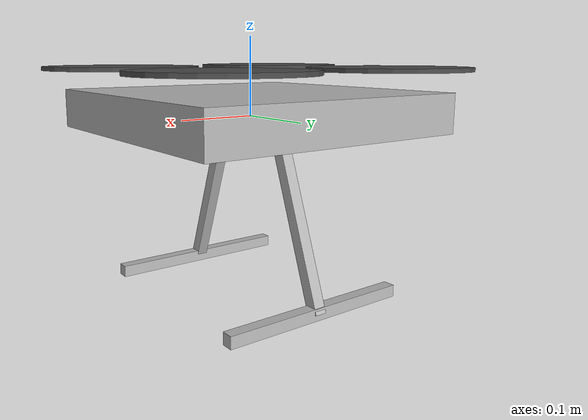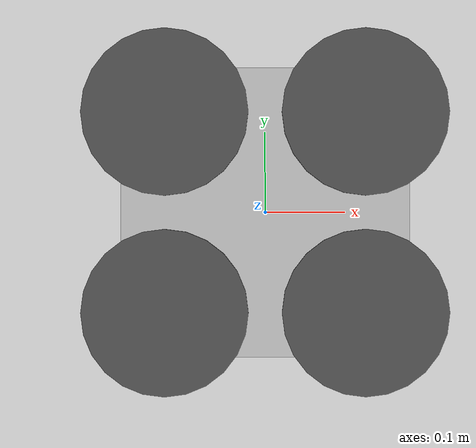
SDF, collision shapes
<?xml version="1.0" ?>
<sdf version="1.6">
  <model name="rig_frame">
    <static>true</static>
    <include>
      <uri>model://x500</uri>
    </include>
  </model>
</sdf>

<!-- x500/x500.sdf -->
<sdf version="1.6">
  <model name="x500">
    <link name="base_link">
      <velocity_decay/>
      <inertial>
        <mass>2.0</mass>
        <inertia>
          <ixx>0.02166666666666667</ixx><ixy>0</ixy><ixz>0</ixz>
          <iyy>0.02166666666666667</iyy><iyz>0</iyz>
          <izz>0.04000000000000001</izz>
        </inertia>
      </inertial>
      <visual name="base_link_visual">
        <pose>0 0 .025 0 0 3.141592654</pose>
        <geometry>
          <mesh><scale>0.689655 0.689655 1</scale><uri>model://x500/meshes/NXP-HGD-CF.dae</uri></mesh>
        </geometry>
      </visual>
      <visual name="5010_motor_base_0">
        <pose>0.120 0.120 .032 0 0 -.45</pose>
        <geometry>
          <mesh><scale>1 1 1</scale><uri>model://x500/meshes/5010Base.dae</uri></mesh>
        </geometry>
      </visual>
      <visual name="5010_motor_base_1">
        <pose>-0.120 0.120 .032 0 0 -.45</pose>
        <geometry>
          <mesh><scale>1 1 1</scale><uri>model://x500/meshes/5010Base.dae</uri></mesh>
        </geometry>
      </visual>
      <visual name="5010_motor_base_2">
        <pose>0.120 -0.120 .032 0 0 -.45</pose>
        <geometry>
          <mesh><scale>1 1 1</scale><uri>model://x500/meshes/5010Base.dae</uri></mesh>
        </geometry>
      </visual>
      <visual name="5010_motor_base_3">
        <pose>-0.120 -0.120 .032 0 0 -.45</pose>
        <geometry>
          <mesh><scale>1 1 1</scale><uri>model://x500/meshes/5010Base.dae</uri></mesh>
        </geometry>
      </visual>

      <collision name="base_link_collision_0">
        <pose>0 0 .007 0 0 0</pose>
        <geometry><box><size>0.35355339059327373 0.35355339059327373 0.05</size></box></geometry>
        <surface>
          <contact><ode><min_depth>0.001</min_depth><max_vel>0</max_vel></ode></contact>
          <friction><ode/></friction>
        </surface>
      </collision>
      <collision name="base_link_collision_1">
        <pose>0 -0.098 -.123 -0.35 0 0</pose>
        <geometry><box><size>0.015 0.015 0.21</size></box></geometry>
        <surface>
          <contact><ode><min_depth>0.001</min_depth><max_vel>0</max_vel></ode></contact>
          <friction><ode/></friction>
        </surface>
      </collision>
      <collision name="base_link_collision_2">
        <pose>0 0.098 -.123 0.35 0 0</pose>
        <geometry><box><size>0.015 0.015 0.21</size></box></geometry>
        <surface>
          <contact><ode><min_depth>0.001</min_depth><max_vel>0</max_vel></ode></contact>
          <friction><ode/></friction>
        </surface>
      </collision>
      <collision name="base_link_collision_3">
        <pose>0 -0.132 -.2195 0 0 0</pose>
        <geometry><box><size>0.25 0.015 0.015</size></box></geometry>
        <surface>
          <contact><ode><min_depth>0.001</min_depth><max_vel>0</max_vel></ode></contact>
          <friction><ode/></friction>
        </surface>
      </collision>
      <collision name="base_link_collision_4">
        <pose>0 0.132 -.2195 0 0 0</pose>
        <geometry><box><size>0.25 0.015 0.015</size></box></geometry>
        <surface>
          <contact><ode><min_depth>0.001</min_depth><max_vel>0</max_vel></ode></contact>
          <friction><ode/></friction>
        </surface>
      </collision>
    </link>

    <link name='/imu_link'>
      <pose>0 0 0.02 0 0 0</pose>
      <inertial>
        <pose>0 0 0 0 0 0</pose>
        <mass>0.015</mass>
        <inertia>
          <ixx>1e-05</ixx>
          <ixy>0</ixy>
          <ixz>0</ixz>
          <iyy>1e-05</iyy>
          <iyz>0</iyz>
          <izz>1e-05</izz>
        </inertia>
      </inertial>
    </link>

    <joint name='/imu_joint' type='revolute'>
      <child>/imu_link</child>
      <parent>base_link</parent>
      <axis>
        <xyz>1 0 0</xyz>
        <limit>
          <lower>0</lower>
          <upper>0</upper>
          <effort>0</effort>
          <velocity>0</velocity>
        </limit>
        <dynamics>
          <spring_reference>0</spring_reference>
          <spring_stiffness>0</spring_stiffness>
        </dynamics>
        <use_parent_model_frame>1</use_parent_model_frame>
      </axis>
    </joint>

    <link name="rotor_0">
      <gravity>true</gravity>
      <self_collide>false</self_collide>
      <velocity_decay/>
      <pose>0.120 -0.120 0.06 0 0 0</pose>
      <inertial>
        <mass>0.016076923076923075</mass>
        <inertia>
          <ixx>3.8464910483993325e-07</ixx><ixy>0</ixy><ixz>0</ixz>
          <iyy>2.6115851691700804e-05</iyy><iyz>0</iyz>
          <izz>2.649858234714004e-05</izz>
        </inertia>
      </inertial>
      <visual name="rotor_0_visual">
        <pose>-0.01575758 -0.10484848 -0.01146006 0 0 0</pose>
        <geometry>
          <mesh><scale>0.6060606061 0.6060606061 0.6060606061</scale><uri>model://x500/meshes/1345_prop_ccw.stl</uri></mesh>
        </geometry>
        <material>
          <script><name>Gazebo/DarkGrey</name><uri>file://media/materials/scripts/gazebo.material</uri></script>
        </material>
      </visual>
      <visual name="rotor_0_visual_motor_bell">
        <pose>0 0 -.032 0 0 0</pose>
        <geometry><mesh><scale>1 1 1</scale><uri>model://x500/meshes/5010Bell.dae</uri></mesh></geometry>
      </visual>
      <collision name="rotor_0_collision">
        <pose>0 0 0 0 0 0</pose>
        <geometry><cylinder><radius>0.1</radius><length>0.005</length></cylinder></geometry>
        <surface><contact><ode/></contact><friction><ode/></friction></surface>
      </collision>
    </link>

    <joint name="rotor_0_joint" type="revolute">
      <parent>base_link</parent>
      <child>rotor_0</child>
      <axis>
        <xyz>0 0 1</xyz>
        <limit><lower>-1e16</lower><upper>1e16</upper></limit>
        <dynamics><spring_reference>0</spring_reference><spring_stiffness>0</spring_stiffness></dynamics>
      </axis>
      <physics><ode><implicit_spring_damper>1</implicit_spring_damper></ode></physics>
    </joint>

    <link name="rotor_1">
      <gravity>true</gravity>
      <self_collide>false</self_collide>
      <velocity_decay/>
      <pose>-0.120 0.120 0.06 0 0 0</pose>
      <inertial>
        <mass>0.016076923076923075</mass>
        <inertia>
          <ixx>3.8464910483993325e-07</ixx><ixy>0</ixy><ixz>0</ixz>
          <iyy>2.6115851691700804e-05</iyy><iyz>0</iyz>
          <izz>2.649858234714004e-05</izz>
        </inertia>
      </inertial>
      <visual name="rotor_1_visual">
        <pose>-0.01575758 -0.10484848 -0.01146006 0 0 0</pose>
        <geometry>
          <mesh><scale>0.6060606061 0.6060606061 0.6060606061</scale><uri>model://x500/meshes/1345_prop_ccw.stl</uri></mesh>
        </geometry>
        <material>
          <script><name>Gazebo/DarkGrey</name><uri>file://media/materials/scripts/gazebo.material</uri></script>
        </material>
      </visual>
      <visual name="rotor_1_visual_motor_bell">
        <pose>0 0 -.032 0 0 0</pose>
        <geometry><mesh><scale>1 1 1</scale><uri>model://x500/meshes/5010Bell.dae</uri></mesh></geometry>
      </visual>
      <collision name="rotor_1_collision">
        <pose>0 0 0 0 0 0</pose>
        <geometry><cylinder><radius>0.1</radius><length>0.005</length></cylinder></geometry>
        <surface><contact><ode/></contact><friction><ode/></friction></surface>
      </collision>
    </link>

    <joint name="rotor_1_joint" type="revolute">
      <parent>base_link</parent>
      <child>rotor_1</child>
      <axis>
        <xyz>0 0 1</xyz>
        <limit><lower>-1e16</lower><upper>1e16</upper></limit>
        <dynamics><spring_reference>0</spring_reference><spring_stiffness>0</spring_stiffness></dynamics>
      </axis>
      <physics><ode><implicit_spring_damper>1</implicit_spring_damper></ode></physics>
    </joint>

    <link name="rotor_2">
      <gravity>true</gravity>
      <self_collide>false</self_collide>
      <velocity_decay/>
      <pose>0.120 0.120 0.06 0 0 0</pose>
      <inertial>
        <mass>0.016076923076923075</mass>
        <inertia>
          <ixx>3.8464910483993325e-07</ixx><ixy>0</ixy><ixz>0</ixz>
          <iyy>2.6115851691700804e-05</iyy><iyz>0</iyz>
          <izz>2.649858234714004e-05</izz>
        </inertia>
      </inertial>
      <visual name="rotor_2_visual">
        <pose>-0.01575758 -0.10484848 -0.01146006 0 0 0</pose>
        <geometry>
          <mesh><scale>0.6060606061 0.6060606061 0.6060606061</scale><uri>model://x500/meshes/1345_prop_cw.stl</uri></mesh>
        </geometry>
        <material>
          <script><name>Gazebo/DarkGrey</name><uri>file://media/materials/scripts/gazebo.material</uri></script>
        </material>
      </visual>
      <visual name="rotor_2_visual_motor_bell">
        <pose>0 0 -.032 0 0 0</pose>
        <geometry><mesh><scale>1 1 1</scale><uri>model://x500/meshes/5010Bell.dae</uri></mesh></geometry>
      </visual>
      <collision name="rotor_2_collision">
        <pose>0 0 0 0 0 0</pose>
        <geometry><cylinder><radius>0.1</radius><length>0.005</length></cylinder></geometry>
        <surface><contact><ode/></contact><friction><ode/></friction></surface>
      </collision>
    </link>

    <joint name="rotor_2_joint" type="revolute">
      <parent>base_link</parent>
      <child>rotor_2</child>
      <axis>
        <xyz>0 0 1</xyz>
        <limit><lower>-1e16</lower><upper>1e16</upper></limit>
        <dynamics><spring_reference>0</spring_reference><spring_stiffness>0</spring_stiffness></dynamics>
      </axis>
      <physics><ode><implicit_spring_damper>1</implicit_spring_damper></ode></physics>
    </joint>

    <link name="rotor_3">
      <gravity>true</gravity>
      <self_collide>false</self_collide>
      <velocity_decay/>
      <pose>-0.120 -0.120 0.06 0 0 0</pose>
      <inertial>
        <mass>0.016076923076923075</mass>
        <inertia>
          <ixx>3.8464910483993325e-07</ixx><ixy>0</ixy><ixz>0</ixz>
          <iyy>2.6115851691700804e-05</iyy><iyz>0</iyz>
          <izz>2.649858234714004e-05</izz>
        </inertia>
      </inertial>
      <visual name="rotor_3_visual">
        <pose>-0.01575758 -0.10484848 -0.01146006 0 0 0</pose>
        <geometry>
          <mesh><scale>0.6060606061 0.6060606061 0.6060606061</scale><uri>model://x500/meshes/1345_prop_cw.stl</uri></mesh>
        </geometry>
        <material>
          <script><name>Gazebo/DarkGrey</name><uri>file://media/materials/scripts/gazebo.material</uri></script>
        </material>
      </visual>
      <visual name="rotor_3_visual_motor_bell">
        <pose>0 0 -.032 0 0 0</pose>
        <geometry><mesh><scale>1 1 1</scale><uri>model://x500/meshes/5010Bell.dae</uri></mesh></geometry>
      </visual>
      <collision name="rotor_3_collision">
        <pose>0 0 0 0 0 0</pose>
        <geometry><cylinder><radius>0.1</radius><length>0.005</length></cylinder></geometry>
        <surface><contact><ode/></contact><friction><ode/></friction></surface>
      </collision>
    </link>

    <joint name="rotor_3_joint" type="revolute">
      <parent>base_link</parent>
      <child>rotor_3</child>
      <axis>
        <xyz>0 0 1</xyz>
        <limit><lower>-1e16</lower><upper>1e16</upper></limit>
        <dynamics><spring_reference>0</spring_reference><spring_stiffness>0</spring_stiffness></dynamics>
      </axis>
      <physics><ode><implicit_spring_damper>1</implicit_spring_damper></ode></physics>
    </joint>

    <plugin name='front_right_motor_model' filename='libgazebo_motor_model.so'>
      <robotNamespace/>
      <jointName>rotor_0_joint</jointName>
      <linkName>rotor_0</linkName>
      <turningDirection>ccw</turningDirection>
      <timeConstantUp>0.0125</timeConstantUp>
      <timeConstantDown>0.025</timeConstantDown>
      <maxRotVelocity>1000</maxRotVelocity>
      <motorConstant>1.4e-05</motorConstant>
      <momentConstant>0.016</momentConstant>
      <commandSubTopic>/gazebo/command/motor_speed</commandSubTopic>
      <motorNumber>0</motorNumber>
      <rotorDragCoefficient>8.06428e-05</rotorDragCoefficient>
      <rollingMomentCoefficient>1e-06</rollingMomentCoefficient>
      <motorSpeedPubTopic>/motor_speed/0</motorSpeedPubTopic>
      <rotorVelocitySlowdownSim>10</rotorVelocitySlowdownSim>
    </plugin>
    <plugin name='back_left_motor_model' filename='libgazebo_motor_model.so'>
      <robotNamespace/>
      <jointName>rotor_1_joint</jointName>
      <linkName>rotor_1</linkName>
      <turningDirection>ccw</turningDirection>
      <timeConstantUp>0.0125</timeConstantUp>
      <timeConstantDown>0.025</timeConstantDown>
      <maxRotVelocity>1000</maxRotVelocity>
      <motorConstant>1.4e-05</motorConstant>
      <momentConstant>0.016</momentConstant>
      <commandSubTopic>/gazebo/command/motor_speed</commandSubTopic>
      <motorNumber>1</motorNumber>
      <rotorDragCoefficient>8.06428e-05</rotorDragCoefficient>
      <rollingMomentCoefficient>1e-06</rollingMomentCoefficient>
      <motorSpeedPubTopic>/motor_speed/1</motorSpeedPubTopic>
      <rotorVelocitySlowdownSim>10</rotorVelocitySlowdownSim>
    </plugin>
    <plugin name='front_left_motor_model' filename='libgazebo_motor_model.so'>
      <robotNamespace/>
      <jointName>rotor_2_joint</jointName>
      <linkName>rotor_2</linkName>
      <turningDirection>cw</turningDirection>
      <timeConstantUp>0.0125</timeConstantUp>
      <timeConstantDown>0.025</timeConstantDown>
      <maxRotVelocity>1000</maxRotVelocity>
      <motorConstant>1.4e-05</motorConstant>
      <momentConstant>0.016</momentConstant>
      <commandSubTopic>/gazebo/command/motor_speed</commandSubTopic>
      <motorNumber>2</motorNumber>
      <rotorDragCoefficient>8.06428e-05</rotorDragCoefficient>
      <rollingMomentCoefficient>1e-06</rollingMomentCoefficient>
      <motorSpeedPubTopic>/motor_speed/2</motorSpeedPubTopic>
      <rotorVelocitySlowdownSim>10</rotorVelocitySlowdownSim>
    </plugin>
    <plugin name='back_right_motor_model' filename='libgazebo_motor_model.so'>
      <robotNamespace/>
      <jointName>rotor_3_joint</jointName>
      <linkName>rotor_3</linkName>
      <turningDirection>cw</turningDirection>
      <timeConstantUp>0.0125</timeConstantUp>
      <timeConstantDown>0.025</timeConstantDown>
      <maxRotVelocity>1000</maxRotVelocity>
      <motorConstant>1.4e-05</motorConstant>
      <momentConstant>0.016</momentConstant>
      <commandSubTopic>/gazebo/command/motor_speed</commandSubTopic>
      <motorNumber>3</motorNumber>
      <rotorDragCoefficient>8.06428e-05</rotorDragCoefficient>
      <rollingMomentCoefficient>1e-06</rollingMomentCoefficient>
      <motorSpeedPubTopic>/motor_speed/3</motorSpeedPubTopic>
      <rotorVelocitySlowdownSim>10</rotorVelocitySlowdownSim>
    </plugin>
    <plugin name='rosbag' filename='libgazebo_multirotor_base_plugin.so'>
      <robotNamespace/>
      <linkName>base_link</linkName>
      <rotorVelocitySlowdownSim>10</rotorVelocitySlowdownSim>
    </plugin>
    <plugin name='groundtruth_plugin' filename='libgazebo_groundtruth_plugin.so'>
      <robotNamespace/>
    </plugin>
    <plugin name='magnetometer_plugin' filename='libgazebo_magnetometer_plugin.so'>
      <robotNamespace/>
      <pubRate>100</pubRate>
      <noiseDensity>0.0004</noiseDensity>
      <randomWalk>6.4e-06</randomWalk>
      <biasCorrelationTime>600</biasCorrelationTime>
      <magTopic>/mag</magTopic>
    </plugin>
    <plugin name='barometer_plugin' filename='libgazebo_barometer_plugin.so'>
      <robotNamespace/>
      <pubRate>50</pubRate>
      <baroTopic>/baro</baroTopic>
      <baroDriftPaPerSec>0</baroDriftPaPerSec>
    </plugin>
    <plugin name='mavlink_interface' filename='libgazebo_mavlink_interface.so'>
      <robotNamespace/>
      <imuSubTopic>/imu</imuSubTopic>
      <magSubTopic>/mag</magSubTopic>
      <baroSubTopic>/baro</baroSubTopic>
      <mavlink_addr>INADDR_ANY</mavlink_addr>
      <mavlink_tcp_port>4560</mavlink_tcp_port>
      <mavlink_udp_port>14560</mavlink_udp_port>
      <serialEnabled>0</serialEnabled>
      <serialDevice>/dev/ttyACM0</serialDevice>
      <baudRate>921600</baudRate>
      <qgc_addr>INADDR_ANY</qgc_addr>
      <qgc_udp_port>14550</qgc_udp_port>
      <sdk_addr>INADDR_ANY</sdk_addr>
      <sdk_udp_port>14540</sdk_udp_port>
      <hil_mode>0</hil_mode>
      <hil_state_level>0</hil_state_level>
      <send_vision_estimation>0</send_vision_estimation>
      <send_odometry>1</send_odometry>
      <enable_lockstep>1</enable_lockstep>
      <use_tcp>1</use_tcp>
      <motorSpeedCommandPubTopic>/gazebo/command/motor_speed</motorSpeedCommandPubTopic>
      <control_channels>
        <channel name='rotor1'>
          <input_index>0</input_index>
          <input_offset>0</input_offset>
          <input_scaling>1000</input_scaling>
          <zero_position_disarmed>0</zero_position_disarmed>
          <zero_position_armed>100</zero_position_armed>
          <joint_control_type>velocity</joint_control_type>
        </channel>
        <channel name='rotor2'>
          <input_index>1</input_index>
          <input_offset>0</input_offset>
          <input_scaling>1000</input_scaling>
          <zero_position_disarmed>0</zero_position_disarmed>
          <zero_position_armed>100</zero_position_armed>
          <joint_control_type>velocity</joint_control_type>
        </channel>
        <channel name='rotor3'>
          <input_index>2</input_index>
          <input_offset>0</input_offset>
          <input_scaling>1000</input_scaling>
          <zero_position_disarmed>0</zero_position_disarmed>
          <zero_position_armed>100</zero_position_armed>
          <joint_control_type>velocity</joint_control_type>
        </channel>
        <channel name='rotor4'>
          <input_index>3</input_index>
          <input_offset>0</input_offset>
          <input_scaling>1000</input_scaling>
          <zero_position_disarmed>0</zero_position_disarmed>
          <zero_position_armed>100</zero_position_armed>
          <joint_control_type>velocity</joint_control_type>
        </channel>
        <channel name='rotor5'>
          <input_index>4</input_index>
          <input_offset>1</input_offset>
          <input_scaling>324.6</input_scaling>
          <zero_position_disarmed>0</zero_position_disarmed>
          <zero_position_armed>0</zero_position_armed>
          <joint_control_type>velocity</joint_control_type>
          <joint_control_pid>
            <p>0.1</p>
            <i>0</i>
            <d>0</d>
            <iMax>0.0</iMax>
            <iMin>0.0</iMin>
            <cmdMax>2</cmdMax>
            <cmdMin>-2</cmdMin>
          </joint_control_pid>
          <joint_name>zephyr_delta_wing::propeller_joint</joint_name>
        </channel>
        <channel name='rotor6'>
          <input_index>5</input_index>
          <input_offset>0</input_offset>
          <input_scaling>0.524</input_scaling>
          <zero_position_disarmed>0</zero_position_disarmed>
          <zero_position_armed>0</zero_position_armed>
          <joint_control_type>position</joint_control_type>
          <joint_name>zephyr_delta_wing::flap_left_joint</joint_name>
          <joint_control_pid>
            <p>10.0</p>
            <i>0</i>
            <d>0</d>
            <iMax>0</iMax>
            <iMin>0</iMin>
            <cmdMax>20</cmdMax>
            <cmdMin>-20</cmdMin>
          </joint_control_pid>
        </channel>
        <channel name='rotor7'>
          <input_index>6</input_index>
          <input_offset>0</input_offset>
          <input_scaling>0.524</input_scaling>
          <zero_position_disarmed>0</zero_position_disarmed>
          <zero_position_armed>0</zero_position_armed>
          <joint_control_type>position</joint_control_type>
          <joint_name>zephyr_delta_wing::flap_right_joint</joint_name>
          <joint_control_pid>
            <p>10.0</p>
            <i>0</i>
            <d>0</d>
            <iMax>0</iMax>
            <iMin>0</iMin>
            <cmdMax>20</cmdMax>
            <cmdMin>-20</cmdMin>
          </joint_control_pid>
        </channel>
        <channel name='rotor8'>
          <input_index>7</input_index>
          <input_offset>0</input_offset>
          <input_scaling>0.524</input_scaling>
          <zero_position_disarmed>0</zero_position_disarmed>
          <zero_position_armed>0</zero_position_armed>
          <joint_control_type>position</joint_control_type>
        </channel>
      </control_channels>
    </plugin>
    <plugin name='rotors_gazebo_imu_plugin' filename='libgazebo_imu_plugin.so'>
      <robotNamespace/>
      <linkName>/imu_link</linkName>
      <imuTopic>/imu</imuTopic>
      <gyroscopeNoiseDensity>0.00018665</gyroscopeNoiseDensity>
      <gyroscopeRandomWalk>3.8785e-05</gyroscopeRandomWalk>
      <gyroscopeBiasCorrelationTime>1000.0</gyroscopeBiasCorrelationTime>
      <gyroscopeTurnOnBiasSigma>0.0087</gyroscopeTurnOnBiasSigma>
      <accelerometerNoiseDensity>0.00186</accelerometerNoiseDensity>
      <accelerometerRandomWalk>0.006</accelerometerRandomWalk>
      <accelerometerBiasCorrelationTime>300.0</accelerometerBiasCorrelationTime>
      <accelerometerTurnOnBiasSigma>0.196</accelerometerTurnOnBiasSigma>
    </plugin>
  </model>
</sdf>
